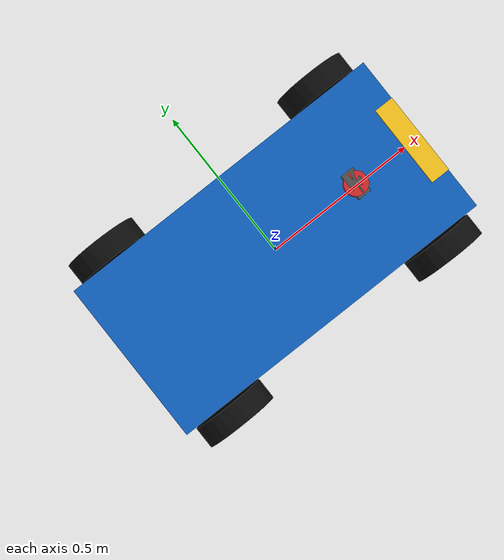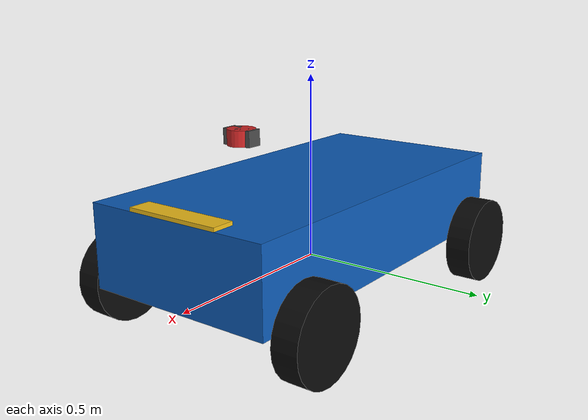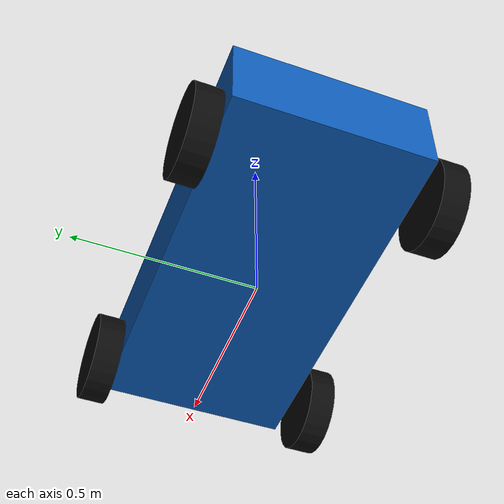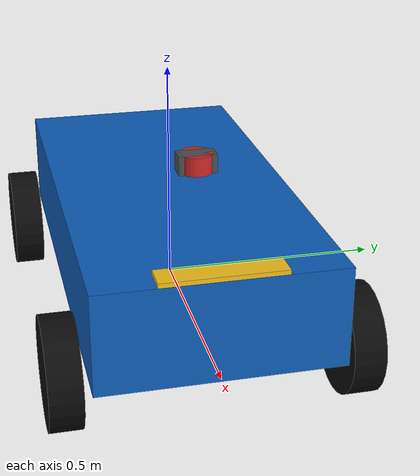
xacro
<?xml version="1.0"?>
<robot name="course_ackermann" xmlns:xacro="http://www.ros.org/wiki/xacro">

  <!-- Шасси -->
  <xacro:property name="wheelbase" value="0.80"/>        <!-- база: от задней оси до передней, м -->
  <xacro:property name="track" value="0.62"/>            <!-- колея: между центрами левого и правого колёс, м -->
  <xacro:property name="wheel_radius" value="0.12"/>
  <xacro:property name="wheel_width" value="0.07"/>
  <xacro:property name="wheel_mass" value="0.8"/>        <!-- кг -->
  <xacro:property name="knuckle_mass" value="0.2"/>      <!-- кг, поворотный кулак -->
  <xacro:property name="knuckle_radius" value="0.02"/>   <!-- м, условный размер для инерции -->
  <xacro:property name="steering_limit" value="0.55"/>   <!-- рад, предел поворота кулака -->
  <xacro:property name="steering_effort" value="25.0"/>
  <xacro:property name="steering_velocity" value="2.0"/> <!-- рад/с; в SDF не задано, URDF требует -->

  <!-- Корпус -->
  <xacro:property name="body_length" value="1.05"/>      <!-- м, вдоль x -->
  <xacro:property name="body_width" value="0.52"/>       <!-- м, вдоль y -->
  <xacro:property name="body_height" value="0.22"/>      <!-- м, вдоль z -->
  <xacro:property name="body_z" value="0.12"/>           <!-- м, центр корпуса над base_link -->
  <xacro:property name="body_mass" value="12.0"/>        <!-- кг -->

  <!-- Сенсоры: в SDF камера, лидар и IMU закреплены в одной точке -->
  <xacro:property name="sensor_x" value="0.28"/>         <!-- м, вперёд от base_link -->
  <xacro:property name="sensor_z" value="0.38"/>         <!-- м, вверх от base_link -->
  <xacro:property name="sensor_mass" value="0.033333333333"/>  <!-- кг -->
  <xacro:property name="camera_size" value="0.04"/>      <!-- м, ребро корпуса камеры -->
  <xacro:property name="lidar_radius" value="0.035"/>
  <xacro:property name="lidar_height" value="0.04"/>
  <xacro:property name="imu_size" value="0.02"/>

  <material name="body_blue"><color rgba="0.05 0.36 0.72 1"/></material>
  <material name="tyre_black"><color rgba="0.04 0.04 0.04 1"/></material>
  <material name="marker_yellow"><color rgba="0.95 0.75 0.10 1"/></material>
  <material name="camera_grey"><color rgba="0.30 0.30 0.30 1"/></material>
  <material name="lidar_red"><color rgba="0.80 0.15 0.15 1"/></material>
  <material name="imu_green"><color rgba="0.15 0.65 0.25 1"/></material>

  <!-- Тензоры инерции однородных тел относительно центра масс -->
  <xacro:macro name="box_inertial" params="mass x y z *origin">
    <inertial>
      <xacro:insert_block name="origin"/>
      <mass value="${mass}"/>
      <inertia ixx="${mass * (y * y + z * z) / 12}" ixy="0" ixz="0"
               iyy="${mass * (x * x + z * z) / 12}" iyz="0"
               izz="${mass * (x * x + y * y) / 12}"/>
    </inertial>
  </xacro:macro>

  <!-- Ось цилиндра — z системы inertial origin -->
  <xacro:macro name="cylinder_inertial" params="mass radius length *origin">
    <inertial>
      <xacro:insert_block name="origin"/>
      <mass value="${mass}"/>
      <inertia ixx="${mass * (3 * radius * radius + length * length) / 12}" ixy="0" ixz="0"
               iyy="${mass * (3 * radius * radius + length * length) / 12}" iyz="0"
               izz="${mass * radius * radius / 2}"/>
    </inertial>
  </xacro:macro>

  <!-- Колесо: ось вращения y; цилиндр URDF направлен по z, поэтому поворот на 90° вокруг x -->
  <xacro:macro name="wheel" params="name">
    <link name="${name}">
      <visual>
        <origin xyz="0 0 0" rpy="${pi / 2} 0 0"/>
        <geometry><cylinder radius="${wheel_radius}" length="${wheel_width}"/></geometry>
        <material name="tyre_black"/>
      </visual>
      <collision>
        <origin xyz="0 0 0" rpy="${pi / 2} 0 0"/>
        <geometry><cylinder radius="${wheel_radius}" length="${wheel_width}"/></geometry>
      </collision>
      <xacro:cylinder_inertial mass="${wheel_mass}" radius="${wheel_radius}" length="${wheel_width}">
        <origin xyz="0 0 0" rpy="${pi / 2} 0 0"/>
      </xacro:cylinder_inertial>
    </link>
  </xacro:macro>

  <!-- Переднее колесо: base_link → кулак (руль, revolute z) → колесо (continuous y) -->
  <xacro:macro name="front_wheel" params="side y_sign">
    <link name="front_${side}_knuckle">
      <xacro:box_inertial mass="${knuckle_mass}"
                          x="${2 * knuckle_radius}" y="${2 * knuckle_radius}" z="${2 * knuckle_radius}">
        <origin xyz="0 0 0" rpy="0 0 0"/>
      </xacro:box_inertial>
    </link>
    <joint name="front_${side}_steering_joint" type="revolute">
      <parent link="base_link"/>
      <child link="front_${side}_knuckle"/>
      <origin xyz="${wheelbase / 2} ${y_sign * track / 2} 0" rpy="0 0 0"/>
      <axis xyz="0 0 1"/>
      <limit lower="${-steering_limit}" upper="${steering_limit}"
             effort="${steering_effort}" velocity="${steering_velocity}"/>
    </joint>
    <xacro:wheel name="front_${side}_wheel"/>
    <joint name="front_${side}_wheel_joint" type="continuous">
      <parent link="front_${side}_knuckle"/>
      <child link="front_${side}_wheel"/>
      <origin xyz="0 0 0" rpy="0 0 0"/>
      <axis xyz="0 1 0"/>
    </joint>
  </xacro:macro>

  <!-- Заднее колесо крепится прямо к base_link -->
  <xacro:macro name="rear_wheel" params="side y_sign">
    <xacro:wheel name="rear_${side}_wheel"/>
    <joint name="rear_${side}_wheel_joint" type="continuous">
      <parent link="base_link"/>
      <child link="rear_${side}_wheel"/>
      <origin xyz="${-wheelbase / 2} ${y_sign * track / 2} 0" rpy="0 0 0"/>
      <axis xyz="0 1 0"/>
    </joint>
  </xacro:macro>

  <!-- Сенсор: фиксированное звено; offset задан относительно parent (по контракту base_link) -->
  <xacro:macro name="sensor_joint" params="name parent:=base_link">
    <joint name="${name}_joint" type="fixed">
      <parent link="${parent}"/>
      <child link="${name}_link"/>
      <origin xyz="${sensor_x} 0 ${sensor_z}" rpy="0 0 0"/>
    </joint>
  </xacro:macro>

  <link name="base_link">
    <!-- Отображение: корпус и жёлтая метка спереди — видно, что x смотрит вперёд -->
    <visual>
      <origin xyz="0 0 ${body_z}" rpy="0 0 0"/>
      <geometry><box size="${body_length} ${body_width} ${body_height}"/></geometry>
      <material name="body_blue"/>
    </visual>
    <visual>
      <origin xyz="${body_length / 2 - 0.03} 0 ${body_z + body_height / 2 + 0.005}" rpy="0 0 0"/>
      <geometry><box size="0.06 ${body_width / 2} 0.01"/></geometry>
      <material name="marker_yellow"/>
    </visual>
    <!-- Столкновения: только габарит корпуса, без декоративной метки -->
    <collision>
      <origin xyz="0 0 ${body_z}" rpy="0 0 0"/>
      <geometry><box size="${body_length} ${body_width} ${body_height}"/></geometry>
    </collision>
    <xacro:box_inertial mass="${body_mass}" x="${body_length}" y="${body_width}" z="${body_height}">
      <origin xyz="0 0 ${body_z}" rpy="0 0 0"/>
    </xacro:box_inertial>
  </link>

  <xacro:front_wheel side="left" y_sign="1"/>
  <xacro:front_wheel side="right" y_sign="-1"/>
  <xacro:rear_wheel side="left" y_sign="1"/>
  <xacro:rear_wheel side="right" y_sign="-1"/>

  <link name="camera_link">
    <visual>
      <geometry><box size="${camera_size} ${2 * camera_size} ${camera_size}"/></geometry>
      <material name="camera_grey"/>
    </visual>
    <collision>
      <geometry><box size="${camera_size} ${2 * camera_size} ${camera_size}"/></geometry>
    </collision>
    <xacro:box_inertial mass="${sensor_mass}" x="${camera_size}" y="${2 * camera_size}" z="${camera_size}">
      <origin xyz="0 0 0" rpy="0 0 0"/>
    </xacro:box_inertial>
  </link>
  <xacro:sensor_joint name="camera"/>

  <link name="lidar_link">
    <visual>
      <geometry><cylinder radius="${lidar_radius}" length="${lidar_height}"/></geometry>
      <material name="lidar_red"/>
    </visual>
    <collision>
      <geometry><cylinder radius="${lidar_radius}" length="${lidar_height}"/></geometry>
    </collision>
    <xacro:cylinder_inertial mass="${sensor_mass}" radius="${lidar_radius}" length="${lidar_height}">
      <origin xyz="0 0 0" rpy="0 0 0"/>
    </xacro:cylinder_inertial>
  </link>
  <xacro:sensor_joint name="lidar"/>

  <link name="imu_link">
    <visual>
      <geometry><box size="${imu_size} ${imu_size} ${imu_size}"/></geometry>
      <material name="imu_green"/>
    </visual>
    <collision>
      <geometry><box size="${imu_size} ${imu_size} ${imu_size}"/></geometry>
    </collision>
    <xacro:box_inertial mass="${sensor_mass}" x="${imu_size}" y="${imu_size}" z="${imu_size}">
      <origin xyz="0 0 0" rpy="0 0 0"/>
    </xacro:box_inertial>
  </link>
  <xacro:sensor_joint name="imu"/>

</robot>
